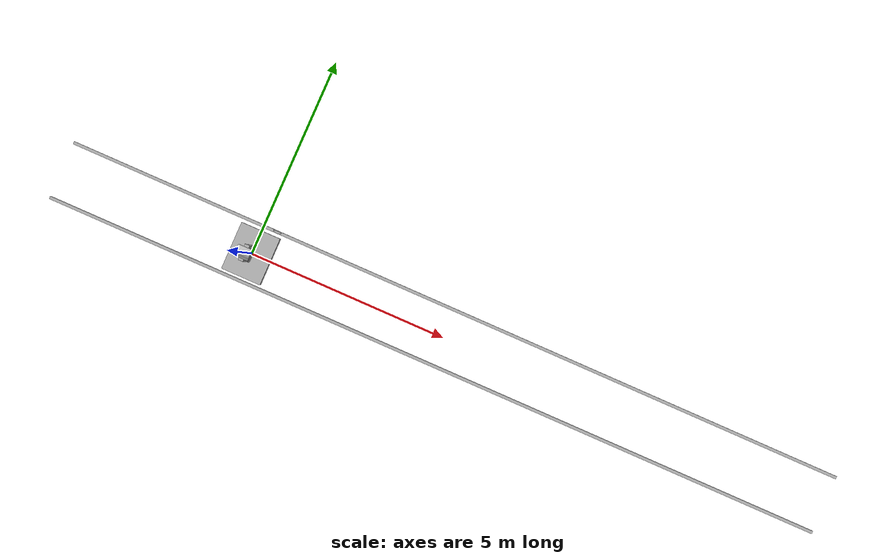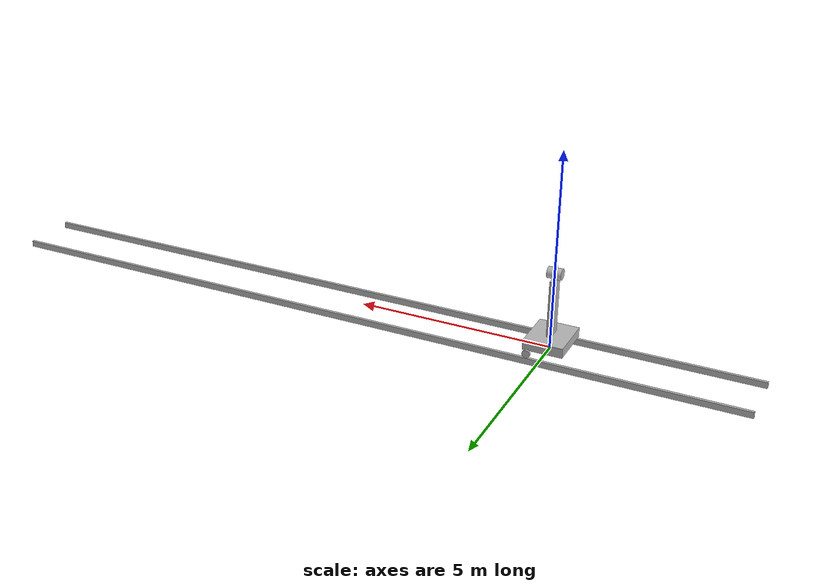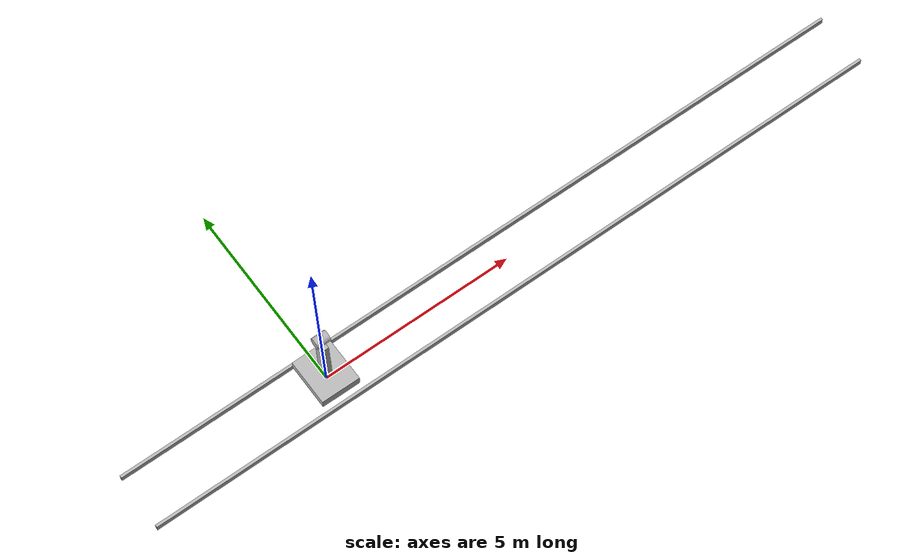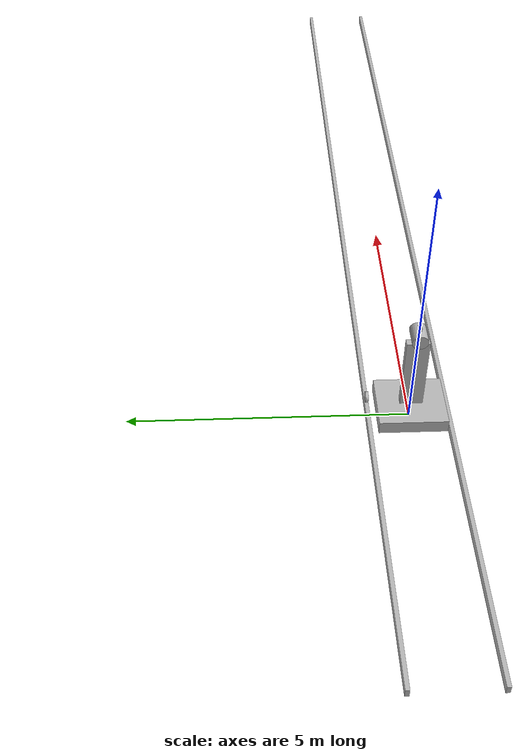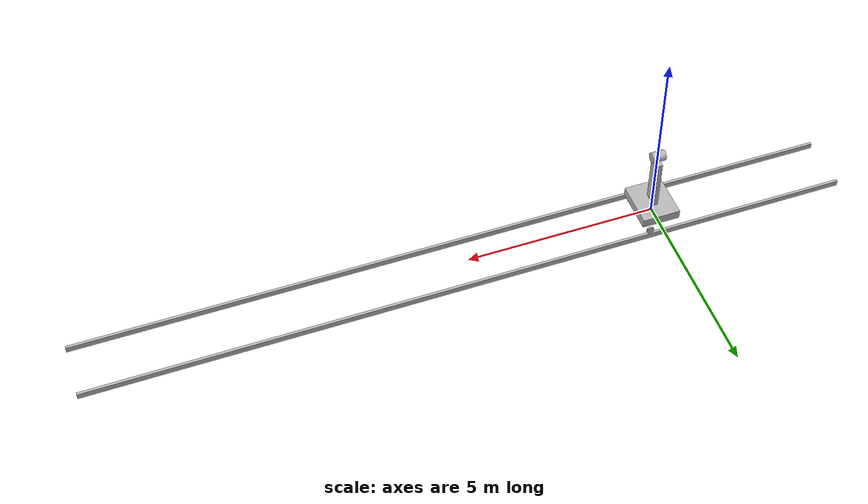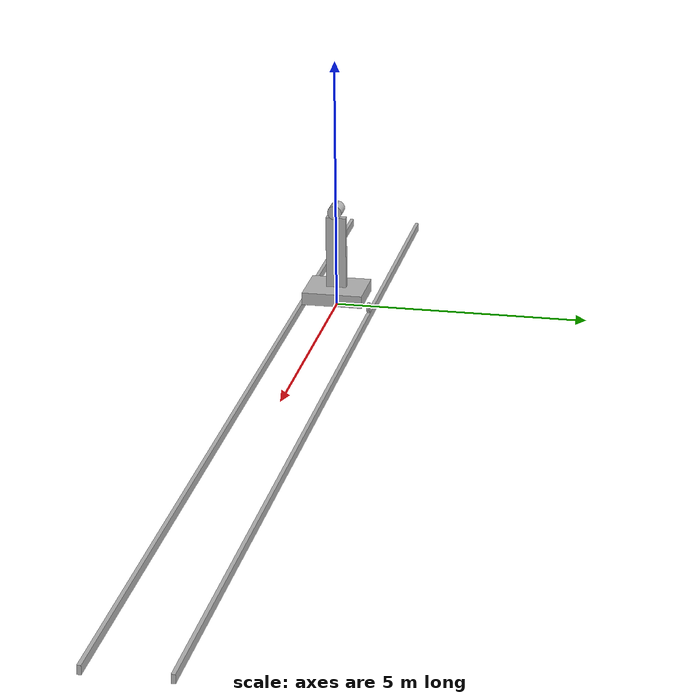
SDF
<?xml version="1.0"?>
<sdf version="1.9">
  <world name="stage_a">
    <physics name="1ms" type="dart">
      <max_step_size>0.001</max_step_size>
      <real_time_factor>1.0</real_time_factor>
    </physics>
    <plugin filename="gz-sim-physics-system" name="gz::sim::systems::Physics"/>
    <plugin filename="gz-sim-user-commands-system" name="gz::sim::systems::UserCommands"/>
    <plugin filename="gz-sim-scene-broadcaster-system" name="gz::sim::systems::SceneBroadcaster"/>
    <gravity>0 0 -9.81</gravity>

    <light type="directional" name="sun">
      <pose>0 0 10 0 0 0</pose>
      <direction>-0.3 0.2 -1</direction>
    </light>

    <model name="track">
      <static>true</static>
      <link name="rails">
        <visual name="left">
          <pose>5 0.7175 -0.08 0 0 0</pose>
          <geometry><box><size>20 0.07 0.16</size></box></geometry>
        </visual>
        <visual name="right">
          <pose>5 -0.7175 -0.08 0 0 0</pose>
          <geometry><box><size>20 0.07 0.16</size></box></geometry>
        </visual>
      </link>
    </model>

    <!-- Engineering initial values; total 120 kg (DESIGN.md §3, §5). -->
    <model name="scan_car">
      <link name="base">
        <pose>0 0 0.25 0 0 0</pose>
        <inertial>
          <mass>85</mass>
          <inertia><ixx>4.2</ixx><iyy>8.1</iyy><izz>10.5</izz><ixy>0</ixy><ixz>0</ixz><iyz>0</iyz></inertia>
        </inertial>
        <visual name="frame">
          <geometry><box><size>1.0 1.2 0.25</size></box></geometry>
        </visual>
        <visual name="mast">
          <pose>0 0 0.85 0 0 0</pose>
          <geometry><box><size>0.12 0.4 1.45</size></box></geometry>
        </visual>
      </link>
      <link name="odometer_wheel">
        <pose>0.35 0.7175 0.1 0 0 0</pose>
        <inertial>
          <mass>5</mass>
          <inertia><ixx>0.015</ixx><iyy>0.025</iyy><izz>0.015</izz><ixy>0</ixy><ixz>0</ixz><iyz>0</iyz></inertia>
        </inertial>
        <visual name="wheel">
          <pose>0 0 0 1.5708 0 0</pose>
          <geometry><cylinder><radius>0.1</radius><length>0.05</length></cylinder></geometry>
        </visual>
      </link>
      <link name="head">
        <pose>0 0 1.97 0 0 0</pose>
        <inertial>
          <mass>30</mass>
          <inertia><ixx>0.5</ixx><iyy>0.4</iyy><izz>0.4</izz><ixy>0</ixy><ixz>0</ixz><iyz>0</iyz></inertia>
        </inertial>
        <visual name="housing">
          <pose>0 0 0 0 1.5708 0</pose>
          <geometry><cylinder><radius>0.14</radius><length>0.35</length></cylinder></geometry>
        </visual>
        <visual name="camera">
          <pose>0 0 0.17 0 0 0</pose>
          <geometry><box><size>0.08 0.06 0.06</size></box></geometry>
        </visual>
      </link>

      <joint name="carriage" type="prismatic">
        <parent>world</parent>
        <child>base</child>
        <axis>
          <xyz>1 0 0</xyz>
          <limit><lower>-1e16</lower><upper>1e16</upper><effort>1e9</effort><velocity>1e9</velocity></limit>
        </axis>
      </joint>
      <joint name="odometer" type="revolute">
        <parent>base</parent>
        <child>odometer_wheel</child>
        <axis>
          <xyz>0 1 0</xyz>
          <limit><lower>-1e16</lower><upper>1e16</upper><effort>1e9</effort><velocity>1e9</velocity></limit>
        </axis>
      </joint>
      <!-- Axis -x: positive joint angle turns the optical axis from the top towards +y. -->
      <joint name="scan" type="revolute">
        <parent>base</parent>
        <child>head</child>
        <axis>
          <xyz>-1 0 0</xyz>
          <limit><lower>-1e16</lower><upper>1e16</upper><effort>1e9</effort><velocity>1e9</velocity></limit>
        </axis>
      </joint>

      <plugin filename="ssb_gazebo_scan" name="ssb_gazebo::ScanSystem">
        <carriage_joint>carriage</carriage_joint>
        <scan_joint>scan</scan_joint>
        <wheel_joint>odometer</wheel_joint>
      </plugin>
    </model>
  </world>
</sdf>
